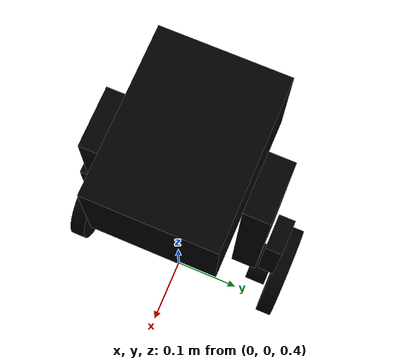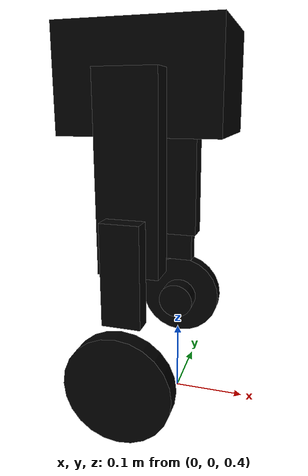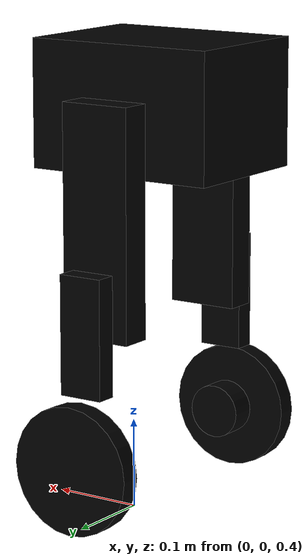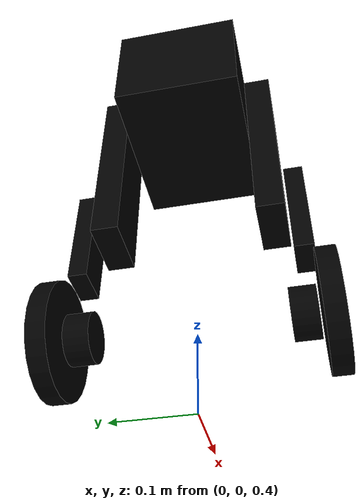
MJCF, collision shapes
<mujoco model="quick_bipedal_urdf">
  <compiler angle="radian" meshdir="/home/crazy_dog/jason-ws/wheel_legged_robot/wheel_legged_genesis/assets/quick_bipedal_urdf/meshes"/>
  <option cone="elliptic" impratio="200" />
  <option timestep="0.002" gravity="0 0 -9.81"/>

  <default>
    <default class="biped_wheel">
      <geom friction="0.4" margin="0.001" condim="1"/>
      <joint axis="0 1 0" damping="0.1" armature="0.01" frictionloss="0.2"/>
      <motor ctrlrange="-23.7 23.7"/>
      <default class="thigh">
        <joint range="0 2.1"/>
        <motor ctrlrange="-23.7 23.7"/>
      </default>
      <default class="calf">
        <joint range="-3.3 0"/>
        <motor ctrlrange="-23.7 23.7"/>
      </default>
      <default class="visual">
        <geom type="mesh" contype="0" conaffinity="0" group="2"/>
      </default>
      <default class="collision">
        <geom group="3"/>
        <default class="wheel">
          <geom size="0.022" priority="1" condim="6" friction="0.8 0.02 0.01"/>
        </default>
      </default>
    </default>
  </default>

  <asset>
    <mesh name="base_link" file="base_link.STL"/>
    <mesh name="R_thigh_link" file="R_thigh_link.STL"/>
    <mesh name="R_calf_link" file="R_calf_link.STL"/>
    <mesh name="R_wheel_link" file="R_wheel_link.STL"/>
    <mesh name="L_thigh_link" file="L_thigh_link.STL"/>
    <mesh name="L_calf_link" file="L_calf_link.STL"/>
    <mesh name="L_wheel_link" file="L_wheel_link.STL"/>
    <mesh name="battery" file="battery.STL"/>
  </asset>

  <worldbody>
    <body name="base_link" pos="0 0 0.8" >
        <inertial pos="-0.03497 7.1375E-05 0.055169" quat="1 0 0 0" mass="2.327" diaginertia="0.010702 0.010715 0.014614" />
        <site name="imu" pos="0 0 0" />
        <geom type="mesh" contype="0" conaffinity="0" group="1" density="0" rgba="0.156863 0.156863 0.156863 1" mesh="base_link"/>
        <geom size="0.1085 0.082 0.07" pos="-0.036 0 0.058" type="box" rgba="0 0 0 0"/>
        <body name="battery" pos="0 0 0">
          <inertial pos="-0.0775 -1.96e-05 0.055503" quat="1 0 0 0" mass="0.68" diaginertia="0.001214 0.000415 0.000978" />
          <geom type="mesh" contype="0" conaffinity="0" group="1" density="0" rgba="0.247059 0.247059 0.247059 1" mesh="battery"/>
        </body>
        <body name="R_thigh_link" pos="-0.0341458 -0.0849999 0.0485">
          <inertial pos="-0.00116866 -0.0168014 -0.141575" quat="0.694626 -0.0171555 0.0223094 0.71882" mass="0.79" diaginertia="0.00401836 0.00364268 0.00052296"/>
          <joint name="R_thigh_joint" pos="0 0 0" axis="0 1 0" range="0 2.1" actuatorfrcrange="-23.7 23.7" damping="0.1" armature="0.01" frictionloss="0.0"/>
          <geom type="mesh" contype="0" conaffinity="0" group="1" density="0" rgba="0.145098 0.145098 0.145098 1" mesh="R_thigh_link"/>
          <geom size="0.04 0.0175 0.125" pos="0 -0.0175 -0.104" type="box" rgba="0 0 0 0"/>
          <body name="R_calf_link" pos="6.23304e-05 -0.0383 -0.18">
            <inertial pos="-0.0001318 -0.0152534 -0.11185" quat="0.706227 -0.0114844 0.0119533 0.707791" mass="0.624823" diaginertia="0.00520652 0.00517913 0.000193779"/>
            <joint name="R_calf_joint" pos="0 0 0" axis="0 1 0" range="-3 0" actuatorfrcrange="-23.7 23.7" damping="0.1" armature="0.01" frictionloss="0.0"/>
            <geom type="mesh" contype="0" conaffinity="0" group="1" density="0" rgba="0.145098 0.145098 0.145098 1" mesh="R_calf_link"/>
            <geom size="0.025 0.0118 0.065" pos="0 -0.0118 -0.04" type="box" rgba="0 0 0 0"/>
            <geom size="0.03 0.015" pos="0 -0.00255 -0.18" quat="0.707388 0.706825 0 0" type="cylinder" rgba="0 0 0 0"/>
            <body name="R_wheel_link" pos="0 -0.04255 -0.18">
              <inertial pos="-6.2331e-05 0.00898741 -1.05886e-08" quat="0.707107 0 0 0.707107" mass="0.3" diaginertia="0.000934 0.00048 0.00048"/>
              <joint name="R_wheel_joint" pos="0 0 0" axis="0 1 0" actuatorfrcrange="-3.69 3.69" damping="0.003" armature="0.005" stiffness="0"/>
              <geom type="mesh" contype="0" conaffinity="0" group="1" density="0" rgba="0.152941 0.152941 0.152941 1" mesh="R_wheel_link"/>
              <geom size="0.07 0.0115" pos="0 0.01 0" quat="0.707388 0.706825 0 0" type="cylinder" rgba="0 0 0 0" />
            </body>
          </body>
        </body>
        <body name="L_thigh_link" pos="-0.0341458 0.0850001 0.0485">
          <inertial pos="-0.00111964 0.0168014 -0.141576" quat="0.71882 0.0223094 -0.0171555 0.694626" mass="0.79" diaginertia="0.00401836 0.00364268 0.00052296"/>
          <joint name="L_thigh_joint" pos="0 0 0" axis="0 1 0" range="0 2.1" actuatorfrcrange="-23.7 23.7" damping="0.1" armature="0.01" frictionloss="0.0"/>
          <geom type="mesh" contype="0" conaffinity="0" group="1" density="0" rgba="0.145098 0.145098 0.145098 1" mesh="L_thigh_link"/>
          <geom size="0.04 0.0175 0.125" pos="0 0.0175 -0.104" type="box" rgba="0 0 0 0"/>
          <body name="L_calf_link" pos="6.23304e-05 0.0383 -0.18">
            <inertial pos="-9.65115e-05 0.0152581 -0.111914" quat="0.707119 0.0120204 -0.0115411 0.706899" mass="0.624823" diaginertia="0.00521172 0.00518528 0.000193726"/>
            <joint name="L_calf_joint" pos="0 0 0" axis="0 1 0" range="-2.7 0" actuatorfrcrange="-23.7 23.7" damping="0.1" armature="0.01" frictionloss="0.0"/>
            <geom type="mesh" contype="0" conaffinity="0" group="1" density="0" rgba="0.145098 0.145098 0.145098 1" mesh="L_calf_link"/>
            <geom size="0.025 0.0118 0.065" pos="0 0.0118 -0.04" type="box" rgba="0 0 0 0"/>
            <geom size="0.03 0.015" pos="0 0.00255 -0.18" quat="0.707388 -0.706825 0 0" type="cylinder" rgba="0 0 0 0"/>
            <body name="L_wheel_link" pos="0 0.04255 -0.18">
              <inertial pos="-8.11407e-10 -0.00898741 2.81785e-10" quat="0.707107 0 0 0.707107" mass="0.3" diaginertia="0.000934 0.00048 0.00048"/>
              <joint name="L_wheel_joint" pos="0 0 0" axis="0 1 0" actuatorfrcrange="-3.69 3.69" damping="0.003" armature="0.005" stiffness="0"/>
              <geom type="mesh" contype="0" conaffinity="0" group="1" density="0" rgba="0.152941 0.152941 0.152941 1" mesh="L_wheel_link"/>
              <geom size="0.07 0.0115" pos="0 -0.01 0" quat="0.707388 -0.706825 0 0" type="cylinder" rgba="0 0 0 0" />
            </body>
          </body>
        </body>
      </body>
  </worldbody>

 <actuator>
    <position name="L_thigh" joint="L_thigh_joint" kp="15" kv="0.5" ctrlrange="0 2.1" forcerange="-20 20"/>
    <position name="L_calf" joint="L_calf_joint" kp="15" kv="0.5" ctrlrange="-3 0" forcerange="-20 20"/>
    <position name="R_thigh" joint="R_thigh_joint" kp="15" kv="0.5" ctrlrange="0 2.1" forcerange="-20 20"/>
    <position name="R_calf" joint="R_calf_joint" kp="15" kv="0.5" ctrlrange="-3 0" forcerange="-20 20"/>
    <velocity name="L_wheel" joint="L_wheel_joint" kv="0.3" forcerange="-2.46 2.46" ctrlrange="-60 60"/>
    <velocity name="R_wheel" joint="R_wheel_joint" kv="0.3" forcerange="-2.46 2.46" ctrlrange="-60 60"/>

  </actuator>

  <sensor>

    <jointpos name="L_thigh_joint_p" joint="L_thigh_joint" />
    <jointpos name="L_calf_joint_p" joint="L_calf_joint" />

    <jointpos name="R_thigh_joint_p" joint="R_thigh_joint" />
    <jointpos name="R_calf_joint_p" joint="R_calf_joint" />

    <jointvel name="L_thigh_joint_v" joint="L_thigh_joint" />
    <jointvel name="L_calf_joint_v" joint="L_calf_joint" />

    <jointvel name="R_thigh_joint_v" joint="R_thigh_joint" />
    <jointvel name="R_calf_joint_v" joint="R_calf_joint" />

    <jointvel name="L_wheel_joint_v" joint="L_wheel_joint" />
    <jointvel name="R_wheel_joint_v" joint="R_wheel_joint" />

    <jointactuatorfrc name="L_thigh_joint_t" joint="L_thigh_joint" noise="0.01" />
    <jointactuatorfrc name="L_calf_joint_t" joint="L_calf_joint" noise="0.01" />

    <jointactuatorfrc name="R_thigh_joint_t" joint="R_thigh_joint" noise="0.01" />
    <jointactuatorfrc name="R_calf_joint_t" joint="R_calf_joint" noise="0.01" />

    <jointactuatorfrc name="L_wheel_joint_t" joint="L_wheel_joint" noise="0.01" />
    <jointactuatorfrc name="R_wheel_joint_t" joint="R_wheel_joint" noise="0.01" />

    <framequat name="orientation" objtype="site" objname="imu" />
    <subtreelinvel name="base_lin_vel" body="base_link" />
    <gyro name="base_ang_vel" site="imu" />
    <framepos name="base_pos" objtype="body" objname="base_link" />

  </sensor>
</mujoco>
